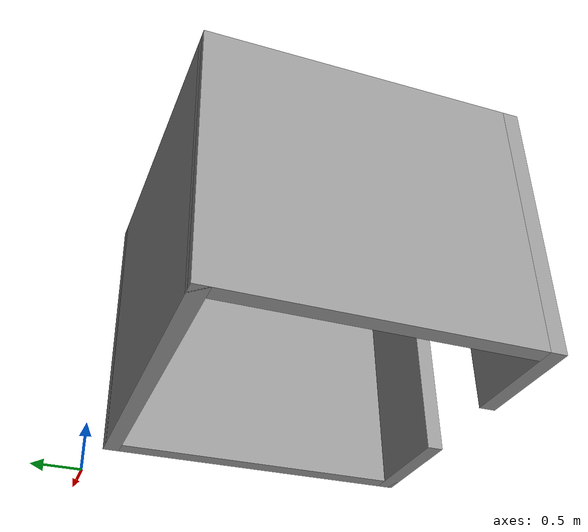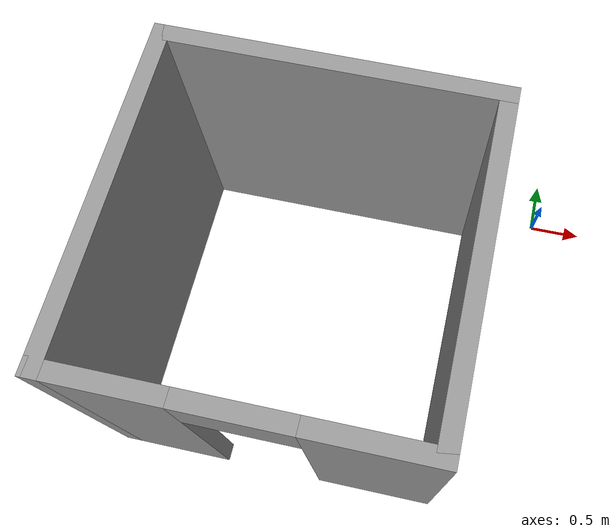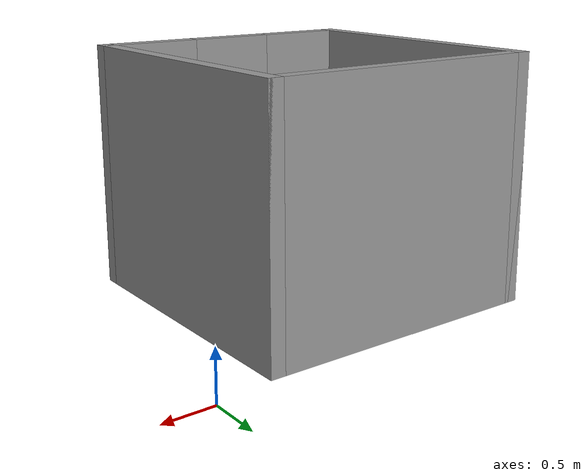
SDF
<?xml version='1.0'?>
<sdf version='1.6'>
  <model name='3x3SmallRoom-1door'>
    <pose frame=''>-2.08159 -1.59669 0 0 -0 0</pose>
    <link name='Wall_12'>
      <collision name='Wall_12_Collision'>
        <geometry>
          <box>
            <size>3 0.15 2.5</size>
          </box>
        </geometry>
        <pose frame=''>0 0 1.25 0 -0 0</pose>
      </collision>
      <visual name='Wall_12_Visual'>
        <pose frame=''>0 0 1.25 0 -0 0</pose>
        <geometry>
          <box>
            <size>3 0.15 2.5</size>
          </box>
        </geometry>
        <material>
          <script>
            <uri>file://media/materials/scripts/gazebo.material</uri>
            <name>Gazebo/Grey</name>
          </script>
          <ambient>1 1 1 1</ambient>
        </material>
        <meta>
          <layer>0</layer>
        </meta>
      </visual>
      <pose frame=''>-1.425 0 0 0 -0 1.5708</pose>
    </link>
    <link name='Wall_13'>
      <collision name='Wall_13_Collision'>
        <geometry>
          <box>
            <size>3 0.15 2.5</size>
          </box>
        </geometry>
        <pose frame=''>0 0 1.25 0 -0 0</pose>
      </collision>
      <visual name='Wall_13_Visual'>
        <pose frame=''>0 0 1.25 0 -0 0</pose>
        <geometry>
          <box>
            <size>3 0.15 2.5</size>
          </box>
        </geometry>
        <material>
          <script>
            <uri>file://media/materials/scripts/gazebo.material</uri>
            <name>Gazebo/Grey</name>
          </script>
          <ambient>1 1 1 1</ambient>
        </material>
        <meta>
          <layer>0</layer>
        </meta>
      </visual>
      <pose frame=''>-0 1.425 0 0 -0 0</pose>
    </link>
    <link name='Wall_14'>
      <collision name='Wall_14_Collision'>
        <geometry>
          <box>
            <size>3 0.15 2.5</size>
          </box>
        </geometry>
        <pose frame=''>0 0 1.25 0 -0 0</pose>
      </collision>
      <visual name='Wall_14_Visual'>
        <pose frame=''>0 0 1.25 0 -0 0</pose>
        <geometry>
          <box>
            <size>3 0.15 2.5</size>
          </box>
        </geometry>
        <material>
          <script>
            <uri>file://media/materials/scripts/gazebo.material</uri>
            <name>Gazebo/Grey</name>
          </script>
          <ambient>1 1 1 1</ambient>
        </material>
        <meta>
          <layer>0</layer>
        </meta>
      </visual>
      <pose frame=''>1.425 0 0 0 -0 -1.5708</pose>
    </link>
    <link name='Wall_15'>
      <pose frame=''>-0 -1.425 0 0 -0 3.14159</pose>
      <visual name='Wall_15_Visual_0'>
        <pose frame=''>-0.967984 0 1.25 0 -0 0</pose>
        <geometry>
          <box>
            <size>1.06403 0.15 2.5</size>
          </box>
        </geometry>
        <material>
          <script>
            <uri>file://media/materials/scripts/gazebo.material</uri>
            <name>Gazebo/Grey</name>
          </script>
          <ambient>1 1 1 1</ambient>
        </material>
        <meta>
          <layer>0</layer>
        </meta>
      </visual>
      <collision name='Wall_15_Collision_0'>
        <geometry>
          <box>
            <size>1.06403 0.15 2.5</size>
          </box>
        </geometry>
        <pose frame=''>-0.967984 0 1.25 0 -0 0</pose>
      </collision>
      <visual name='Wall_15_Visual_1'>
        <pose frame=''>0.982016 0 1.25 0 -0 0</pose>
        <geometry>
          <box>
            <size>1.03597 0.15 2.5</size>
          </box>
        </geometry>
        <material>
          <script>
            <uri>file://media/materials/scripts/gazebo.material</uri>
            <name>Gazebo/Grey</name>
          </script>
          <ambient>1 1 1 1</ambient>
        </material>
        <meta>
          <layer>0</layer>
        </meta>
      </visual>
      <collision name='Wall_15_Collision_1'>
        <geometry>
          <box>
            <size>1.03597 0.15 2.5</size>
          </box>
        </geometry>
        <pose frame=''>0.982016 0 1.25 0 -0 0</pose>
      </collision>
      <visual name='Wall_15_Visual_2'>
        <pose frame=''>0.014033 0 2.25 0 -0 0</pose>
        <geometry>
          <box>
            <size>0.9 0.15 0.5</size>
          </box>
        </geometry>
        <material>
          <script>
            <uri>file://media/materials/scripts/gazebo.material</uri>
            <name>Gazebo/Grey</name>
          </script>
          <ambient>1 1 1 1</ambient>
        </material>
        <meta>
          <layer>0</layer>
        </meta>
      </visual>
      <collision name='Wall_15_Collision_2'>
        <geometry>
          <box>
            <size>0.9 0.15 0.5</size>
          </box>
        </geometry>
        <pose frame=''>0.014033 0 2.25 0 -0 0</pose>
      </collision>
    </link>
    <static>1</static>
  </model>
</sdf>
